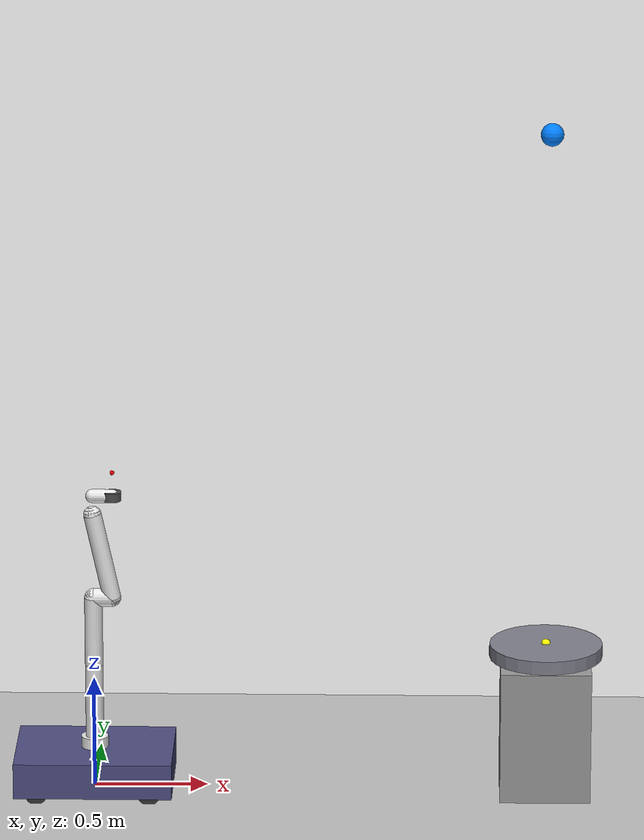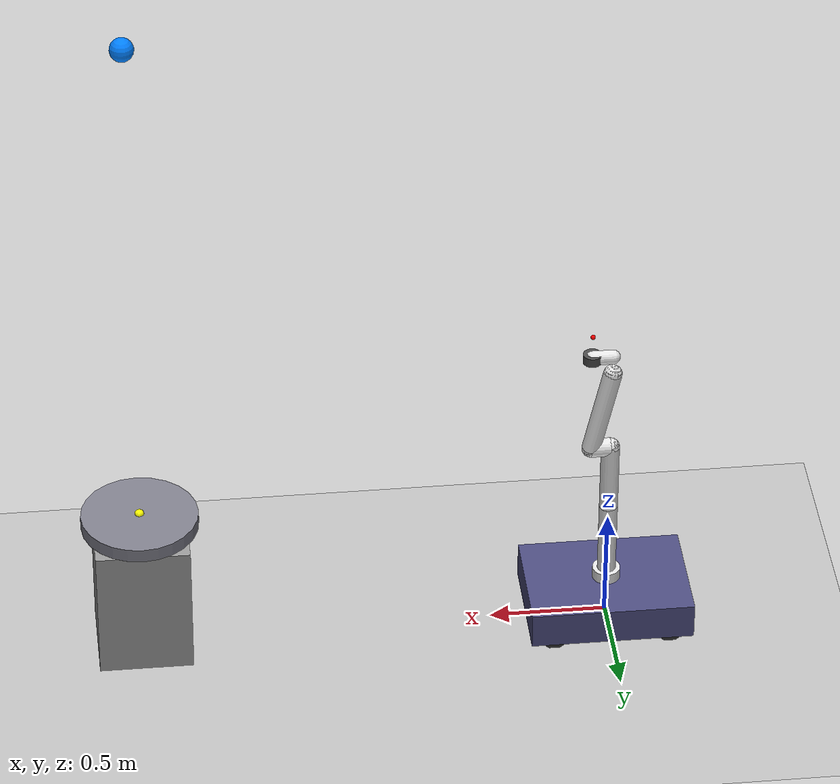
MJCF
<mujoco model="s4_field_inspection">
  <option timestep="0.002" gravity="0 0 -9.81"/>
  <compiler angle="radian"/>

  <default>
    <joint damping="1.0" armature="0.1"/>
    <geom condim="4" friction="1 0.5 0.01"/>
  </default>

  <worldbody>
    <!-- Ground plane -->
    <geom name="floor" type="plane" size="5 5 0.1" rgba="0.75 0.75 0.75 1"/>

    <!-- Mobile base with Panda arm on top -->
    <body name="mobile_base_x" pos="0 0 0.1">
      <geom type="sphere" size="0.001" mass="1" rgba="0 0 0 0"/>
      <joint name="base_slide_x" type="slide" axis="1 0 0" range="-5 5" damping="50"/>
      <body name="mobile_base_y">
        <geom type="sphere" size="0.001" mass="1" rgba="0 0 0 0"/>
      <joint name="base_slide_y" type="slide" axis="0 1 0" range="-5 5" damping="50"/>
        <geom name="base_chassis" type="box" size="0.35 0.25 0.08" rgba="0.3 0.3 0.5 1" mass="25"/>
        <geom name="base_wheel_fl" type="cylinder" pos="0.25 0.22 -0.06" euler="1.5708 0 0" size="0.05 0.02" rgba="0.2 0.2 0.2 1" mass="0.5"/>
        <geom name="base_wheel_fr" type="cylinder" pos="0.25 -0.22 -0.06" euler="1.5708 0 0" size="0.05 0.02" rgba="0.2 0.2 0.2 1" mass="0.5"/>
        <geom name="base_wheel_rl" type="cylinder" pos="-0.25 0.22 -0.06" euler="1.5708 0 0" size="0.05 0.02" rgba="0.2 0.2 0.2 1" mass="0.5"/>
        <geom name="base_wheel_rr" type="cylinder" pos="-0.25 -0.22 -0.06" euler="1.5708 0 0" size="0.05 0.02" rgba="0.2 0.2 0.2 1" mass="0.5"/>

        <!-- Panda arm mounted on mobile base -->
        <body name="panda_link0" pos="0 0 0.08">
          <geom name="link0_geom" type="cylinder" size="0.06 0.05" rgba="0.9 0.9 0.9 1" mass="2.0"/>
          <body name="panda_link1" pos="0 0 0.05">
            <joint name="joint_0" type="hinge" axis="0 0 1" range="-2.8973 2.8973" damping="10"/>
            <geom name="link1_geom" type="capsule" fromto="0 0 0 0 0 0.333" size="0.04" rgba="0.9 0.9 0.9 1" mass="2.0"/>
            <body name="panda_link2" pos="0 0 0.333">
              <joint name="joint_1" type="hinge" axis="0 1 0" range="-1.7628 1.7628" damping="10"/>
              <geom name="link2_geom" type="capsule" fromto="0 0 0 0 0 0.316" size="0.04" rgba="0.9 0.9 0.9 1" mass="2.0"/>
              <body name="panda_link3" pos="0 0 0.316">
                <joint name="joint_2" type="hinge" axis="0 0 1" range="-2.8973 2.8973" damping="10"/>
                <geom name="link3_geom" type="capsule" fromto="0 0 0 0.0825 0 0" size="0.04" rgba="0.9 0.9 0.9 1" mass="2.0"/>
                <body name="panda_link4" pos="0.0825 0 0">
                  <joint name="joint_3" type="hinge" axis="0 -1 0" range="-3.0718 -0.0698" damping="10"/>
                  <geom name="link4_geom" type="capsule" fromto="0 0 0 -0.0825 0 0.384" size="0.04" rgba="0.9 0.9 0.9 1" mass="2.0"/>
                  <body name="panda_link5" pos="-0.0825 0 0.384">
                    <joint name="joint_4" type="hinge" axis="0 0 1" range="-2.8973 2.8973" damping="10"/>
                    <geom name="link5_geom" type="sphere" size="0.04" rgba="0.9 0.9 0.9 1" mass="1.0"/>
                    <body name="panda_link6" pos="0 0 0.088">
                      <joint name="joint_5" type="hinge" axis="0 1 0" range="-0.0175 3.7525" damping="5"/>
                      <geom name="link6_geom" type="capsule" fromto="0 0 0 0.088 0 0" size="0.03" rgba="0.9 0.9 0.9 1" mass="1.0"/>
                      <body name="panda_link7" pos="0.088 0 0">
                        <joint name="joint_6" type="hinge" axis="0 0 1" range="-2.8973 2.8973" damping="2"/>
                        <geom name="link7_geom" type="cylinder" size="0.04 0.02" rgba="0.3 0.3 0.3 1" mass="0.5"/>
                        <site name="ee_site" pos="0 0 0.107" size="0.01" rgba="1 0 0 1"/>
                      </body>
                    </body>
                  </body>
                </body>
              </body>
            </body>
          </body>
        </body>
      </body>
    </body>

    <!-- Inspection target: box with a flange (smaller cylinder attached) -->
    <body name="inspection_target" pos="2.0 0 0.3">
      <geom name="target_box" type="box" size="0.2 0.2 0.3" rgba="0.6 0.6 0.6 1" mass="50"/>
      <geom name="target_flange" type="cylinder" pos="0 0 0.35" size="0.25 0.03" rgba="0.5 0.5 0.55 1" mass="5"/>
      <site name="target_inspection_point" pos="0 0 0.38" size="0.02" rgba="1 1 0 1"/>
    </body>

    <!-- Overhead camera site -->
    <site name="overhead_camera" pos="2.0 0 3.0" euler="3.14159 0 0" size="0.05" rgba="0 0.5 1 1"/>
  </worldbody>

  <actuator>
    <!-- Mobile base actuators -->
    <position name="act_base_x" joint="base_slide_x" kp="500"/>
    <position name="act_base_y" joint="base_slide_y" kp="500"/>
    <!-- Panda arm actuators -->
    <position name="act_joint_0" joint="joint_0" kp="1000"/>
    <position name="act_joint_1" joint="joint_1" kp="1000"/>
    <position name="act_joint_2" joint="joint_2" kp="1000"/>
    <position name="act_joint_3" joint="joint_3" kp="1000"/>
    <position name="act_joint_4" joint="joint_4" kp="1000"/>
    <position name="act_joint_5" joint="joint_5" kp="1000"/>
    <position name="act_joint_6" joint="joint_6" kp="1000"/>
  </actuator>

  <sensor>
    <!-- Panda arm sensors -->
    <jointpos name="jpos_0" joint="joint_0"/>
    <jointpos name="jpos_1" joint="joint_1"/>
    <jointpos name="jpos_2" joint="joint_2"/>
    <jointpos name="jpos_3" joint="joint_3"/>
    <jointpos name="jpos_4" joint="joint_4"/>
    <jointpos name="jpos_5" joint="joint_5"/>
    <jointpos name="jpos_6" joint="joint_6"/>
    <jointvel name="jvel_0" joint="joint_0"/>
    <jointvel name="jvel_1" joint="joint_1"/>
    <jointvel name="jvel_2" joint="joint_2"/>
    <jointvel name="jvel_3" joint="joint_3"/>
    <jointvel name="jvel_4" joint="joint_4"/>
    <jointvel name="jvel_5" joint="joint_5"/>
    <jointvel name="jvel_6" joint="joint_6"/>
    <framepos name="ee_pos" objtype="site" objname="ee_site"/>
    <framequat name="ee_quat" objtype="site" objname="ee_site"/>
    <!-- Mobile base sensors -->
    <jointpos name="base_x" joint="base_slide_x"/>
    <jointpos name="base_y" joint="base_slide_y"/>
  </sensor>
</mujoco>
